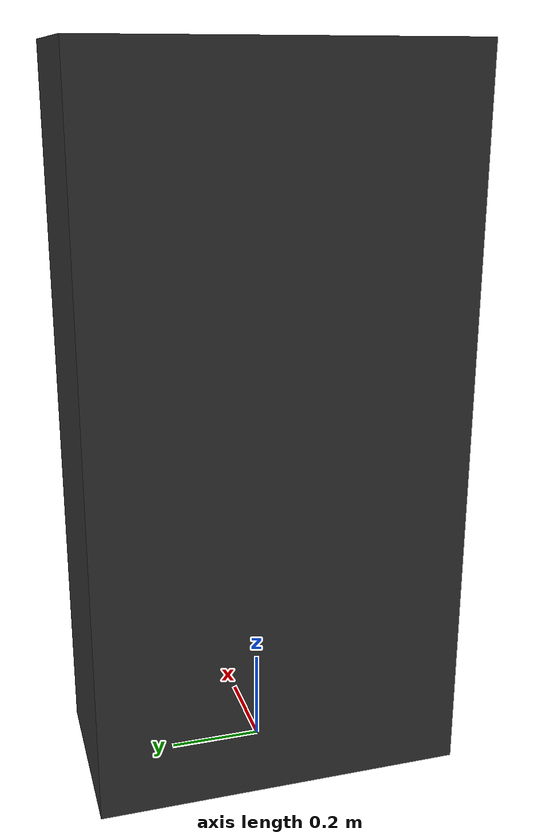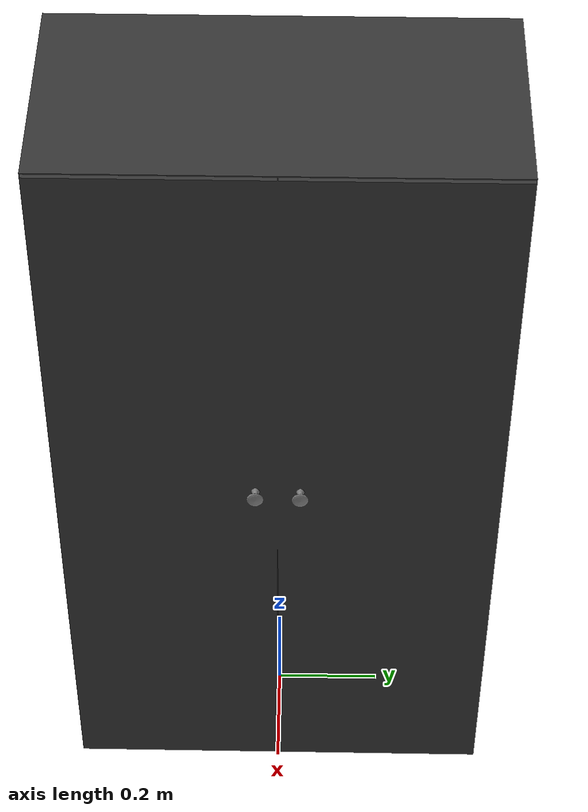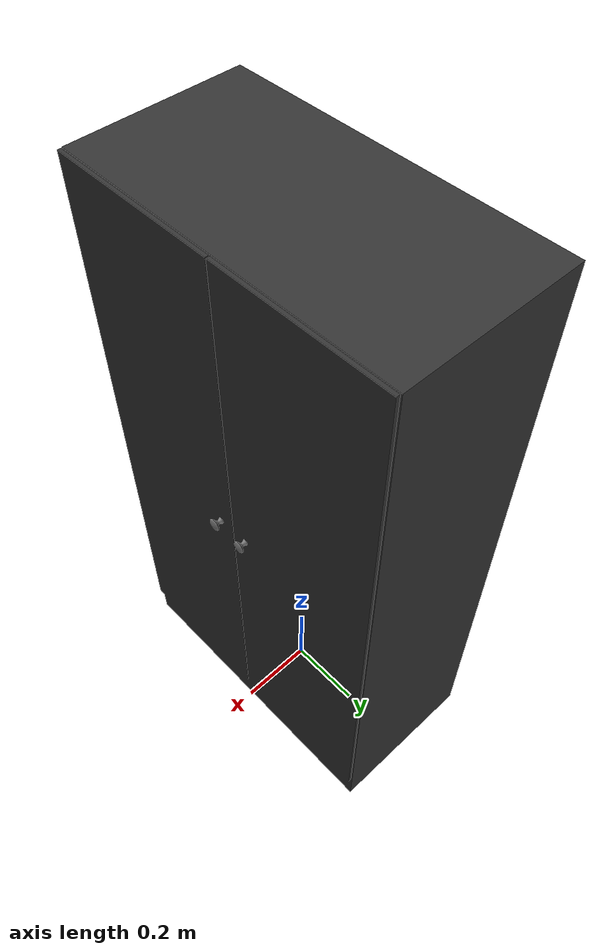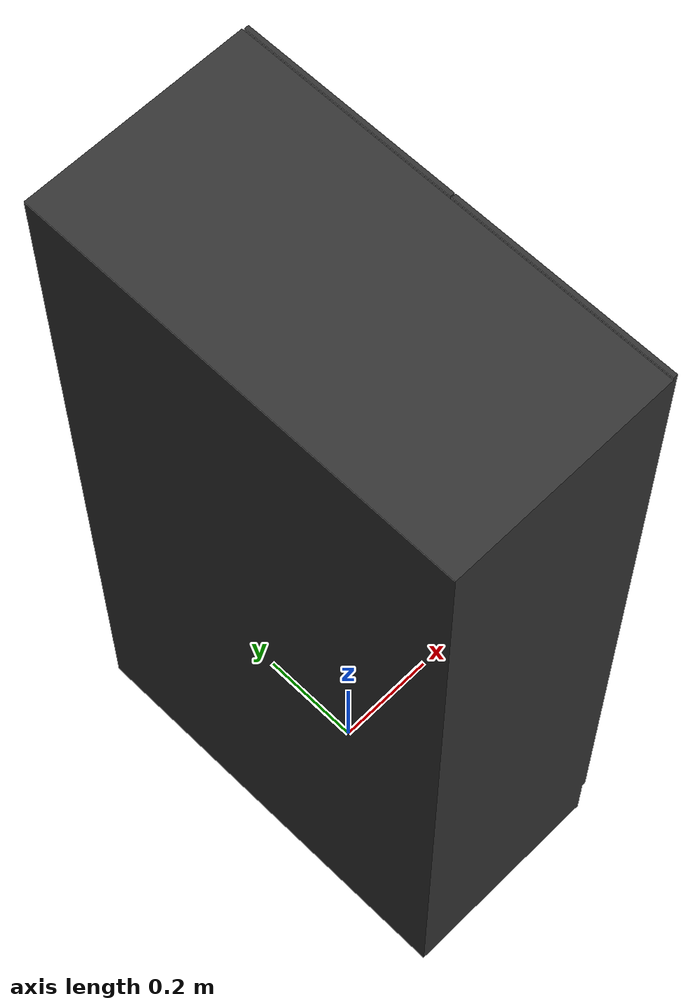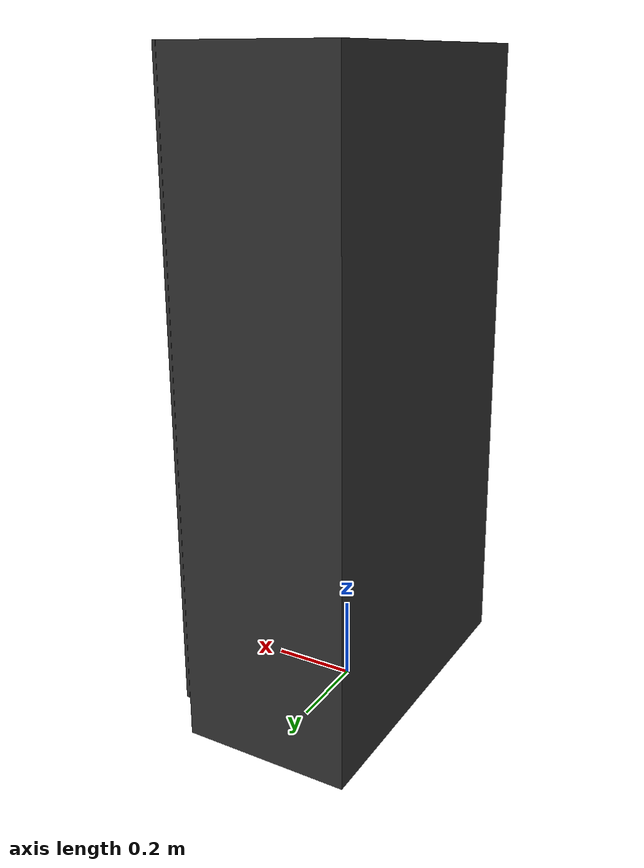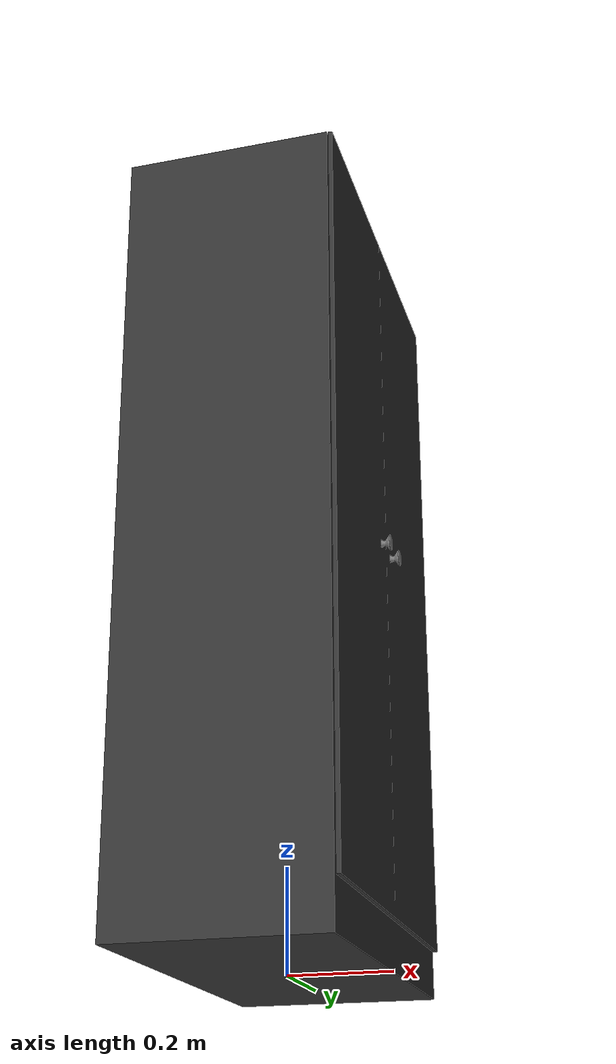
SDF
<?xml version="1.0" ?>
<sdf version="1.0">
  <model name="locker_small">
    <static>true</static>
    <link name="locker_small">
      <collision name="locker_small">
        <pose>0 0 0.7750 0 0 0</pose>
        <geometry>
          <box>
            <size>0.4400 0.8000 1.5500</size>
          </box>
        </geometry>
      </collision>

      <visual name="locker_small_mesh">
	  <cast_shadows>true</cast_shadows>
        <geometry>
          <mesh>
	        <uri>model://locker_small/meshes/model.dae</uri>
	      </mesh>
        </geometry>
      </visual>
    </link>
  </model>
</sdf>
